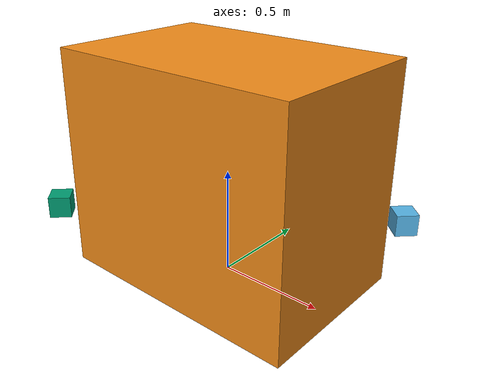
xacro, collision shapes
<?xml version='1.0'?>

<robot name="myrobot" xmlns:xacro="http://www.ros.org/wiki/xacro">

  <xacro:property name="cameraSize" value="0.05"/>
  <xacro:property name="cameraMass" value="0.1"/>
  <xacro:property name="M_PI" value="3.1415926535897931" />

  <xacro:include filename="$(find demonstrator_description)/urdf/demonstrator.gazebo" />
  <xacro:include filename="$(find demonstrator_description)/urdf/demonstrator_materials.xacro" />

  <link name='chassis'>
    <pose>0 0 0.52 0 0 0</pose>

    <inertial>
      <mass value="500"/>
      <origin xyz="0 0 0" rpy=" 0 0 0"/>
      <inertia
          ixx="0.1" ixy="0" ixz="0"
          iyy="0.1" iyz="0"
          izz="0.1"
      />
    </inertial>

    <collision name='collision'>
      <geometry>
        <box size="1.2 0.8 1.04"/>
      </geometry>
    </collision>

    <visual name='chassis_visual'>
      <origin xyz="0 0 0" rpy=" 0 0 0"/>
      <geometry>
        <box size="1.2 0.8 1.04"/>
      </geometry>
    </visual>

  </link>

  <!-- Hokuyo Laser front-->
  <link name="sick_front">
    <collision>
      <origin xyz="0 0 0" rpy="0 0 0"/>
      <geometry>
    <box size="0.1 0.1 0.1"/>
      </geometry>
    </collision>

    <visual>
      <origin xyz="0 0 0" rpy="0 0 0"/>
      <geometry>
        <mesh filename="package://demonstrator_description/meshes/hokuyo.dae"/>
      </geometry>
    </visual>

    <inertial>
      <mass value="1e-5" />
      <origin xyz="0 0 0" rpy="0 0 0"/>
      <inertia ixx="1e-6" ixy="0" ixz="0" iyy="1e-6" iyz="0" izz="1e-6" />
    </inertial>
  </link>

  <!-- Hokuyo Laser rear-->
  <link name="sick_rear">
    <collision>
      <origin xyz="0 0 0" rpy="0 0 ${M_PI}"/>
      <geometry>
    <box size="0.1 0.1 0.1"/>
      </geometry>
    </collision>

    <visual>
      <origin xyz="0 0 0" rpy="0 0 ${M_PI}"/>
      <geometry>
        <mesh filename="package://demonstrator_description/meshes/hokuyo.dae"/>
      </geometry>
    </visual>

    <inertial>
      <mass value="1e-5" />
      <origin xyz="0 0 0" rpy="0 0 ${M_PI}"/>
      <inertia ixx="1e-6" ixy="0" ixz="0" iyy="1e-6" iyz="0" izz="1e-6" />
    </inertial>
  </link>

  <joint name="sick_front_joint" type="fixed">
    <axis xyz="0 1 0" />
    <origin xyz="0.65 0.45 -0.22" rpy="0 0 0.7853982"/>
    <parent link="chassis"/>
    <child link="sick_front"/>
  </joint>

  <joint name="sick_rear_joint" type="fixed">
    <axis xyz="0 1 0" />
    <origin xyz="-0.65 -0.45 -0.22" rpy="0 0 3.92699085"/>
    <parent link="chassis"/>
    <child link="sick_rear"/>
  </joint>

  <link name="world" />

  <joint name="world_joint" type="fixed">
    <parent link="world" />
    <child link = "chassis" />
    <origin xyz="0.0 0.0 0.52" rpy="0.0 0.0 0.0" />
  </joint>

</robot>
